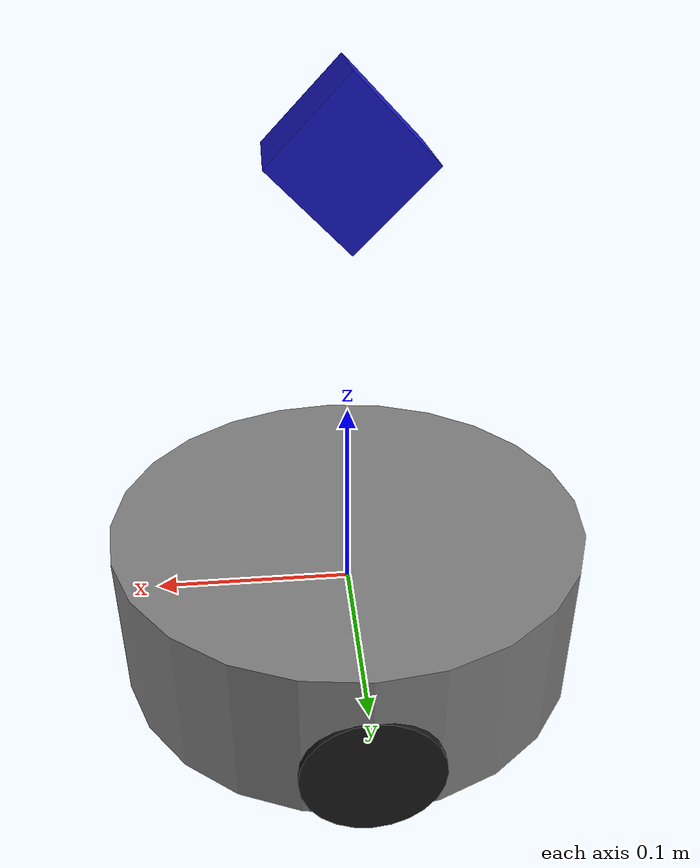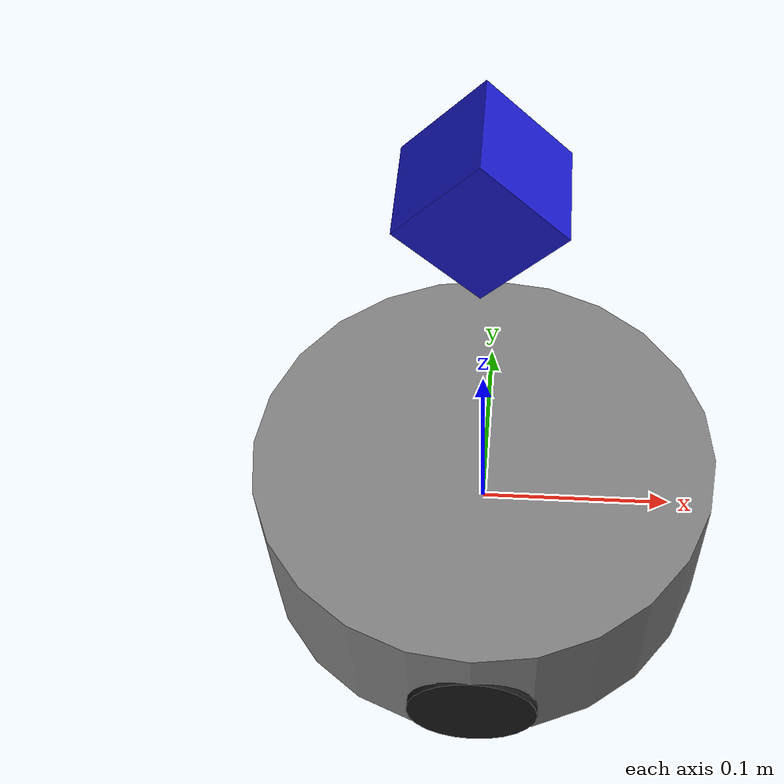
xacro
<?xml version="1.0"?>
<robot xmlns:xacro="http://www.ros.org/wiki/xacro" name="line_follower_bot">
  <xacro:property name="base_radius" value="0.12"/>
  <xacro:property name="wheel_radius" value="0.033"/>
  <xacro:property name="wheel_width" value="0.02"/>
  <xacro:property name="wheel_sep" value="0.22"/>

  <link name="base_link">
    <visual>
      <geometry>
        <cylinder radius="${base_radius}" length="0.08"/>
      </geometry>
      <material name="gray">
        <color rgba="0.5 0.5 0.5 1"/>
      </material>
    </visual>
    <collision>
      <geometry>
        <cylinder radius="${base_radius}" length="0.08"/>
      </geometry>
    </collision>
    <inertial>
      <mass value="3.0"/>
      <origin xyz="0 0 0" rpy="0 0 0"/>
      <inertia ixx="0.03" ixy="0.0" ixz="0.0" iyy="0.03" iyz="0.0" izz="0.05"/>
    </inertial>
  </link>

  <!-- Wheels -->
  <link name="left_wheel_link">
    <visual>
      <origin xyz="0 0 0" rpy="${pi/2} 0 0"/>
      <geometry>
        <cylinder radius="${wheel_radius}" length="${wheel_width}"/>
      </geometry>
      <material name="black">
        <color rgba="0.1 0.1 0.1 1"/>
      </material>
    </visual>
    <collision>
      <origin xyz="0 0 0" rpy="${pi/2} 0 0"/>
      <geometry>
        <cylinder radius="${wheel_radius}" length="${wheel_width}"/>
      </geometry>
      <surface>
        <friction>
          <ode>
            <mu>1.0</mu>
            <mu2>1.0</mu2>
          </ode>
        </friction>
      </surface>
    </collision>
    <inertial>
      <mass value="0.2"/>
      <inertia ixx="0.0005" ixy="0" ixz="0" iyy="0.0005" iyz="0" izz="0.0005"/>
    </inertial>
  </link>

  <link name="right_wheel_link">
    <visual>
      <origin xyz="0 0 0" rpy="${pi/2} 0 0"/>
      <geometry>
        <cylinder radius="${wheel_radius}" length="${wheel_width}"/>
      </geometry>
      <material name="black">
        <color rgba="0.1 0.1 0.1 1"/>
      </material>
    </visual>
    <collision>
      <origin xyz="0 0 0" rpy="${pi/2} 0 0"/>
      <geometry>
        <cylinder radius="${wheel_radius}" length="${wheel_width}"/>
      </geometry>
      <surface>
        <friction>
          <ode>
            <mu>1.0</mu>
            <mu2>1.0</mu2>
          </ode>
        </friction>
      </surface>
    </collision>
    <inertial>
      <mass value="0.2"/>
      <inertia ixx="0.0005" ixy="0" ixz="0" iyy="0.0005" iyz="0" izz="0.0005"/>
    </inertial>
  </link>

  <!-- Camera mast -->
  <link name="camera_link">
    <visual>
      <geometry>
        <box size="0.05 0.05 0.05"/>
      </geometry>
      <material name="blue">
        <color rgba="0.1 0.1 0.8 1"/>
      </material>
    </visual>
    <collision>
      <geometry>
        <box size="0.05 0.05 0.05"/>
      </geometry>
    </collision>
    <inertial>
      <mass value="0.1"/>
      <inertia ixx="0.0001" ixy="0" ixz="0" iyy="0.0001" iyz="0" izz="0.0001"/>
    </inertial>
  </link>

  <!-- Joints -->
  <joint name="left_wheel_joint" type="continuous">
    <parent link="base_link"/>
    <child link="left_wheel_link"/>
    <origin xyz="0 ${wheel_sep/2.0} -0.017" rpy="0 0 0"/>
    <axis xyz="0 1 0"/>
  </joint>

  <joint name="right_wheel_joint" type="continuous">
    <parent link="base_link"/>
    <child link="right_wheel_link"/>
    <origin xyz="0 ${-wheel_sep/2.0} -0.017" rpy="0 0 0"/>
    <axis xyz="0 1 0"/>
  </joint>

  <joint name="camera_joint" type="fixed">
    <parent link="base_link"/>
    <child link="camera_link"/>
    <!-- Camera above robot, pitched ~45deg forward/down (negative pitch looks at ground ahead) -->
    <!-- Centered over base to avoid bias; keep 45deg pitch -->
    <origin xyz="0 0 0.22" rpy="0 ${0.785} 0"/>
  </joint>

  <!-- Transmissions -->
  <gazebo>
    <plugin name="diff_drive" filename="libgazebo_ros_diff_drive.so">
      <ros>
        <namespace>/</namespace>
        <remapping>cmd_vel:=cmd_vel</remapping>
        <remapping>odom:=odom</remapping>
      </ros>
      <update_rate>50</update_rate>
      <left_joint>left_wheel_joint</left_joint>
      <right_joint>right_wheel_joint</right_joint>
      <wheel_separation>${wheel_sep}</wheel_separation>
      <wheel_diameter>${2*wheel_radius}</wheel_diameter>
      <torque>5.0</torque>
      <command_timeout>1.0</command_timeout>
      <odometry_frame>odom</odometry_frame>
      <odometry_topic>odom</odometry_topic>
      <publish_odom>true</publish_odom>
      <publish_tf>true</publish_tf>
      <robot_base_frame>base_link</robot_base_frame>
    </plugin>
  </gazebo>

  <!-- Camera plugin -->
  <gazebo reference="camera_link">
    <sensor name="downward_camera" type="camera">
      <!-- Sensor aligned with link; joint handles tilt -->
      <pose>0 0 0 0 0 0</pose>
      <visualize>true</visualize>
      <update_rate>30</update_rate>
      <camera>
        <horizontal_fov>1.396</horizontal_fov>
        <image>
          <width>640</width>
          <height>480</height>
          <format>R8G8B8</format>
        </image>
        <clip>
          <near>0.05</near>
          <far>5.0</far>
        </clip>
      </camera>
      <plugin name="camera_controller" filename="libgazebo_ros_camera.so">
        <ros>
          <namespace>/</namespace>
          <remapping>image:=/camera/image_raw</remapping>
          <remapping>camera_info:=/camera/camera_info</remapping>
        </ros>
        <frame_name>camera_link</frame_name>
      </plugin>
    </sensor>
  </gazebo>
</robot>
